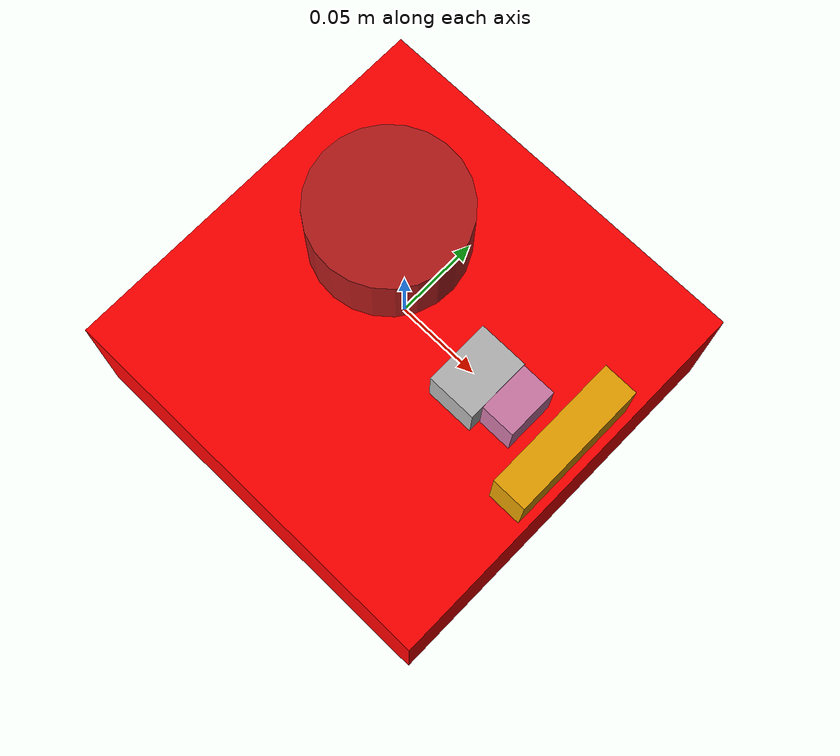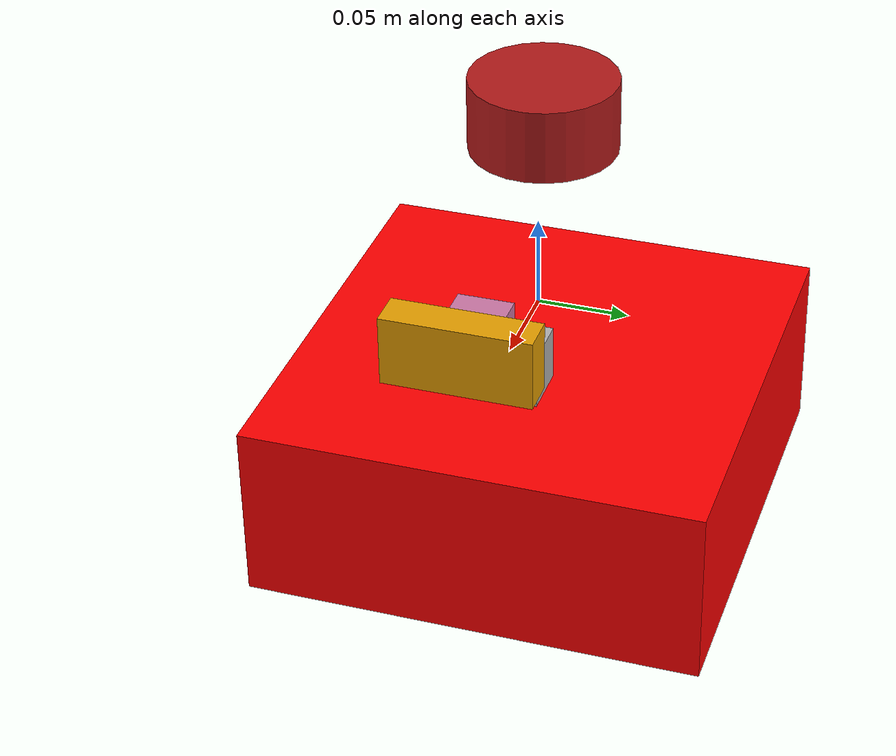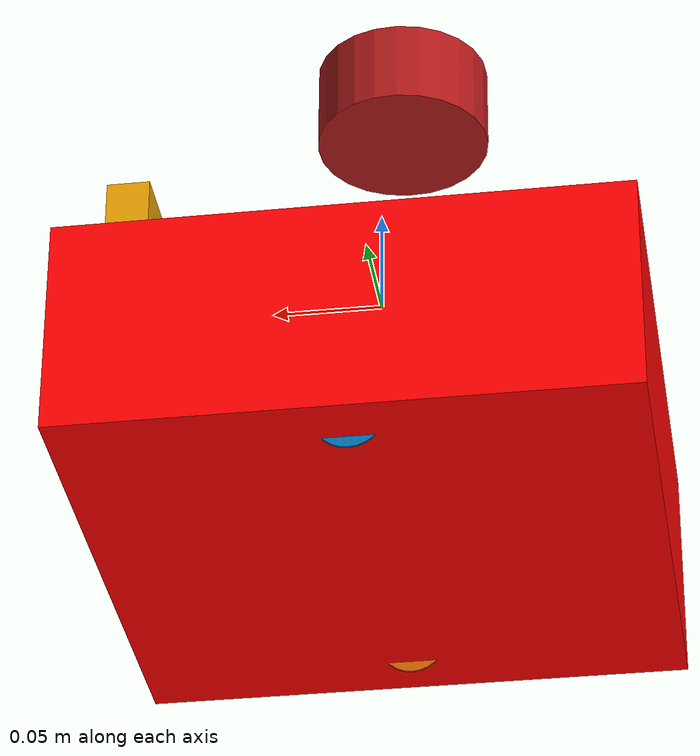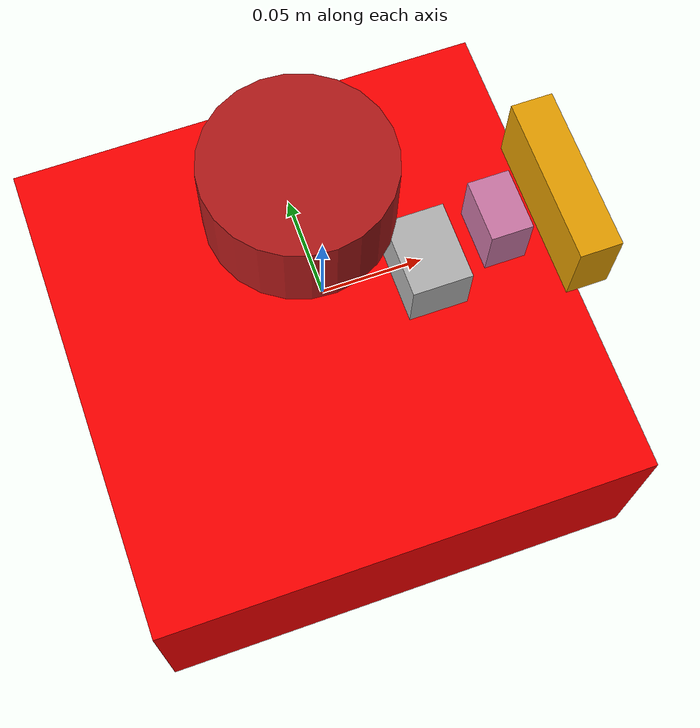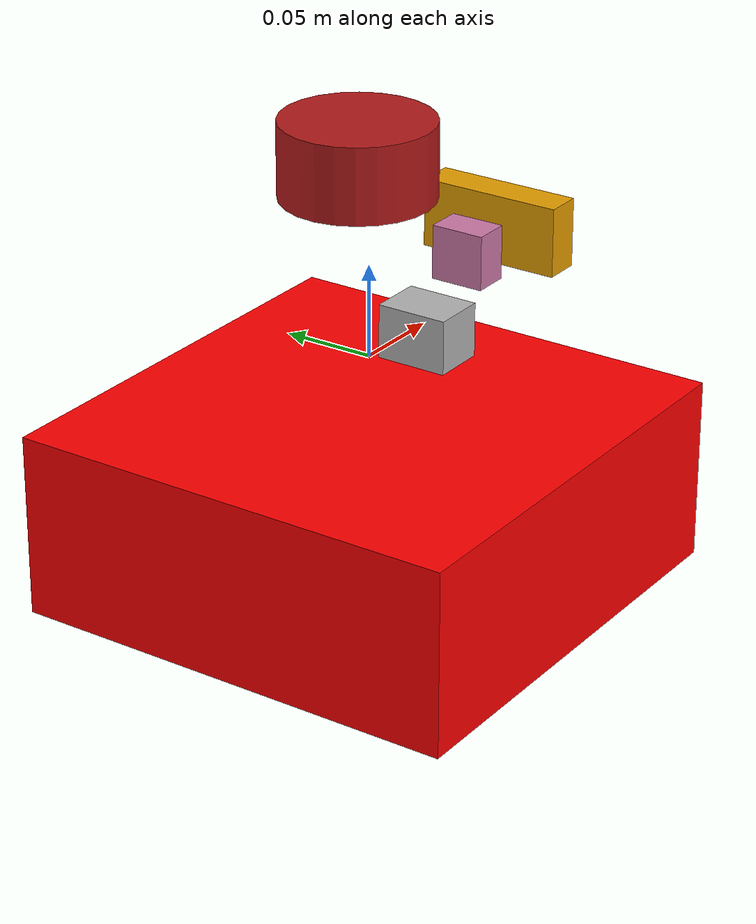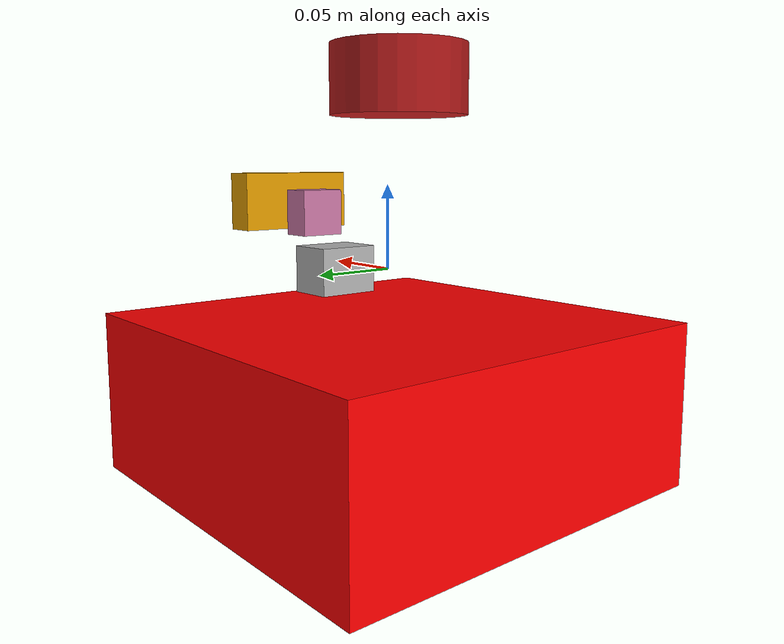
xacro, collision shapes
<?xml version="1.0" ?>
<robot name="ros_tank" xmlns:xacro="http://www.ros.org/wiki/xacro">

    <xacro:include filename="$(find ros_tank_description)/urdf/base_urdf.xacro" />

    <ros2_control name="camera_controller" type="system">
      <hardware>
        <plugin>ros_tank_hardware/SystemPositionOnlyHardware</plugin>
        <param name="example_param_hw_start_duration_sec">0</param>
        <param name="example_param_hw_stop_duration_sec">3.0</param>
        <param name="example_param_hw_slowdown">10</param>
      </hardware>

      <joint name="camera_servo_first_joint">
        <command_interface name="position">
          <param name="min">-1</param>
          <param name="max">1</param>
        </command_interface>
        <state_interface name="position"/>
      </joint>
      <joint name="camera_servo_second_joint">
        <command_interface name="position">
          <param name="min">-1</param>
          <param name="max">1</param>
        </command_interface>
        <state_interface name="position"/>
      </joint>
    </ros2_control>

    <ros2_control name="diff_drive_controller" type="system">
        <hardware>
          <plugin>mock_components/GenericSystem</plugin>
          <param name="calculate_dynamics">true</param>
        </hardware>
      <joint name="joint_left_wheel">
        <command_interface name="velocity"/>
        <state_interface name="position"/>
        <state_interface name="velocity"/>
      </joint>
      <joint name="joint_right_wheel">
        <command_interface name="velocity"/>
        <state_interface name="position"/>
        <state_interface name="velocity"/>
      </joint>
    </ros2_control>

</robot>

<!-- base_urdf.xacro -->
<robot>
    <link name="base_link"></link>

    <!-- Link - chassis -->
    <link name="link_chassis">
        <visual>
            <geometry>
                <mesh filename="package://ros_tank_description/meshes/tank_body.stl" scale="0.00111 0.00111 0.0011"/>
            </geometry>
            <material name="Red">
                <color rgba="1 0 0 1" />
            </material>
        </visual>

        <collision>
            <origin xyz="0 0 -0.08" rpy="0 0 0"/>
            <geometry>
                <box size="0.25 0.25 0.1" />
            </geometry>
        </collision>

        <inertial>
            <mass value="10"/>
            <origin rpy="0 0 0" xyz="0 0 0"/>
            <inertia ixx="0.1" ixy="0" ixz="0" iyy="0.1" iyz="0" izz="0.1"/>
        </inertial>
    </link>

    <joint name="base_link_joint" type="fixed">
        <origin rpy="0 0 0" xyz="0 0 0" />
        <parent link="base_link" />
        <child link="link_chassis" />
    </joint>

    <!-- Joint - laser scan -->
    <joint name="joint_laser_scan_chassis" type="fixed">
        <origin rpy="0 0 3.2" xyz="-0.01 0 0.11" />
        <child link="link_laser_scan" />
        <parent link="link_chassis" />
        <joint_properties damping="1.0" friction="1.0" />
    </joint>

    <!-- Link - laser scan -->
    <link name="link_laser_scan">
        <visual>
            <origin xyz="0 0 0" rpy="0 0 3.1" />
            <geometry>
                <mesh filename="package://ros_tank_description/meshes/lidarA1.stl" pose="0 0 0" scale="0.00111 0.00111 0.0011"/>
            </geometry>
            <material name="Red">
                <color rgba="0.7 0.1 0.1 1" />
            </material>
        </visual>

        <collision>
            <origin xyz="0 0 0" rpy="0 0 0"/>
            <geometry>
                <cylinder radius="0.04" length="0.04"/>
            </geometry>
        </collision>

        <inertial>
            <mass value="0.1"/>
            <origin rpy="0 0 0" xyz="0 0 0.0204"/>
            <inertia ixx="0.01" ixy="0.0" ixz="0.0" iyy="0.01" iyz="0.0" izz="0.01"/>
        </inertial>
    </link>

    <!-- Joint - pointcloud -->
    <joint name="pointcloud_link_joint" type="fixed">
        <origin rpy="0 0 0" xyz="0.051 0.0 0"/>
        <parent link="link_chassis"/>
        <child link="pointcloud_link"/>
        <axis xyz="0 0 0"/>
    </joint>

    <!-- Link - pointcloud -->
    <link name="pointcloud_link"></link>

    <!-- Joint - left wheel -->
    <joint name="joint_left_wheel" type="continuous">
        <origin rpy="0 0 0" xyz="0 0.1 -0.12"/>
        <child link="left_wheel"/>
        <parent link="link_chassis"/>
        <axis rpy="0 0 0" xyz="0 1 0"/>
        <limit effort="10000" velocity="1000"/>
        <joint_properties damping="1.0" friction="1.0"/>
    </joint>

    <!-- Link - left wheel -->
    <link name="left_wheel">
        <visual>
            <origin rpy="0 1.5707 1.5707" xyz="0 0 0"/>
            <geometry>
            <cylinder length="0.001" radius="0.015"/>
            </geometry>
        </visual>

        <collision>
            <origin rpy="0 1.5707 1.5707" xyz="0 0 0"/>
            <geometry>
            <cylinder length="0.001" radius="0.015"/>
            </geometry>
        </collision>

        <inertial>
            <origin rpy="0 1.5707 1.5707" xyz="0 0 0"/>
            <mass value="0.05"/>
            <inertia ixx="1.531666666666667e-05" ixy="0" ixz="0" iyy="1.531666666666667e-05" iyz="0" izz="3.0625000000000006e-05"/>
        </inertial>
    </link>

    <!-- Joint - right wheel -->
    <joint name="joint_right_wheel" type="continuous">
        <origin rpy="0 0 0" xyz="0 -0.1 -0.12"/>
        <child link="right_wheel"/>
        <parent link="link_chassis"/>
        <axis rpy="0 0 0" xyz="0 1 0"/>
        <limit effort="10000" velocity="1000"/>
        <joint_properties damping="1.0" friction="1.0"/>
    </joint>

    <!-- Link - right wheel -->
    <link name="right_wheel">
        <visual>
            <origin rpy="0 1.5707 1.5707" xyz="0 0 0"/>
            <geometry>
            <cylinder length="0.001" radius="0.015"/>
            </geometry>
        </visual>

        <collision>
            <origin rpy="0 1.5707 1.5707" xyz="0 0 0"/>
            <geometry>
            <cylinder length="0.001" radius="0.015"/>
            </geometry>
        </collision>

        <inertial>
            <origin rpy="0 1.5707 1.5707" xyz="0 0 0"/>
            <mass value="0.05"/>
            <inertia ixx="1.531666666666667e-05" ixy="0" ixz="0" iyy="1.531666666666667e-05" iyz="0" izz="3.0625000000000006e-05"/>
        </inertial>
    </link>

     <!-- Joint - camera second servo -->
    <joint name="camera_servo_second_joint" type="revolute">
        <origin xyz="0.03 -0.005 0.02" rpy="0 0 0"/>
        <parent link="camera_servo_first_link"/>
        <child link="camera_second_servo_link"/>
        <axis xyz="0 1 0"/>
        <limit lower="-1.15" upper="1.4" velocity="100" effort="100"/>
    </joint>

    <!-- Link - camera second servo -->
    <link name="camera_second_servo_link">
        <collision>
            <origin xyz="0 0 0.01" rpy="0 0 0"/>
            <geometry>
                <box size="0.02 0.03 0.03" />
            </geometry>
        </collision>
        <visual>
            <origin xyz="0 0 0" rpy="0 0 0"/>
            <geometry>
                <mesh filename="package://ros_tank_description/meshes/camera_servo_2.stl" pose="0 0 0" scale="0.0011 0.00111 0.0011"/>
            </geometry>
        </visual>
        <inertial>
            <origin rpy="0 1.5707 1.5707" xyz="0 0 0"/>
            <mass value="0.05"/>
            <inertia ixx="1.531666666666667e-05" ixy="0" ixz="0" iyy="1.531666666666667e-05" iyz="0" izz="3.0625000000000006e-05"/>
        </inertial>
    </link>

     <!-- Joint - camera first servo -->
    <joint name="camera_servo_first_joint" type="revolute">
        <origin xyz="0.053 0 0" rpy="0 0 0"/>
        <parent link="link_chassis"/>
        <child link="camera_servo_first_link"/>
        <axis xyz="0 0 1"/>
        <limit lower="-1.15" upper="1.4" velocity="100" effort="100"/>
    </joint>

    <!-- Link - camera first servo -->
    <link name="camera_servo_first_link">
        <collision>
            <origin xyz="0 0 -0.005" rpy="0 0 0"/>
            <geometry>
                <box size="0.03 0.04 0.03" />
            </geometry>
        </collision>
        <visual>
            <origin xyz="0 0 0" rpy="0 0 0"/>
            <geometry>
                <mesh filename="package://ros_tank_description/meshes/camera_servo_1.stl" pose="0 0 0" scale="0.0011 0.00111 0.0011"/>
            </geometry>
        </visual>
        <inertial>
            <origin rpy="0 1.5707 1.5707" xyz="0 0 0"/>
            <mass value="0.05"/>
            <inertia ixx="1.531666666666667e-05" ixy="0" ixz="0" iyy="1.531666666666667e-05" iyz="0" izz="3.0625000000000006e-05"/>
        </inertial>
    </link>

    <!-- Camera -->
    <joint name="camera_joint" type="fixed">
        <parent link="camera_second_servo_link"/>
        <child link="camera_link"/>
        <origin xyz="0.03 0 0.017" rpy="0 0 0"/>
    </joint>

    <link name="camera_link">
        <collision>
            <origin xyz="0 0 0" rpy="0 0 0"/>
            <geometry>
                <box size="0.02 0.08 0.038"/>
            </geometry>
        </collision>
        <visual>
            <geometry>
                <mesh filename="package://ros_tank_description/meshes/camera.stl" pose="0 0 0" scale="0.00111 0.00111 0.0011"/>
            </geometry>
        </visual>
        <inertial>
            <origin rpy="0 1.5707 1.5707" xyz="0 0 0"/>
            <mass value="0.05"/>
            <inertia ixx="1.531666666666667e-05" ixy="0" ixz="0" iyy="1.531666666666667e-05" iyz="0" izz="3.0625000000000006e-05"/>
        </inertial>
    </link>
</robot>
